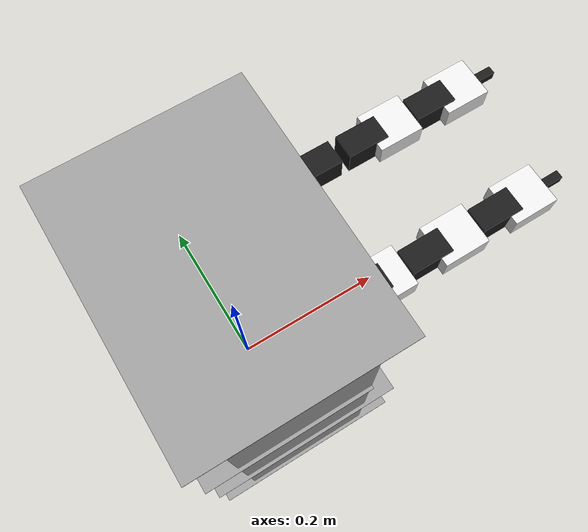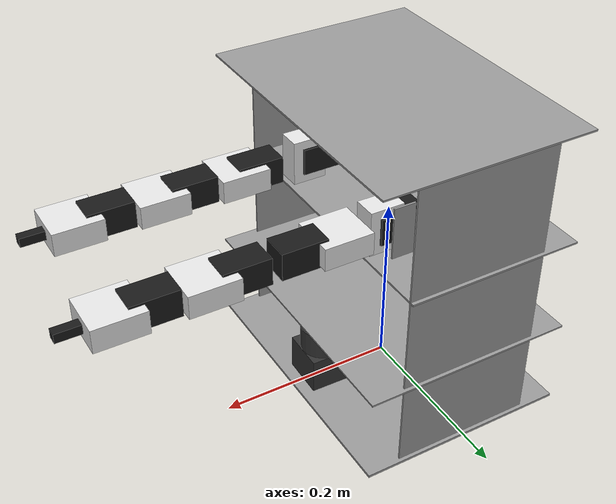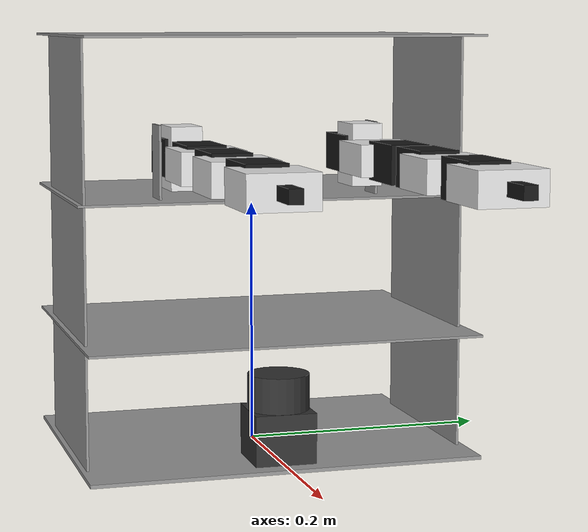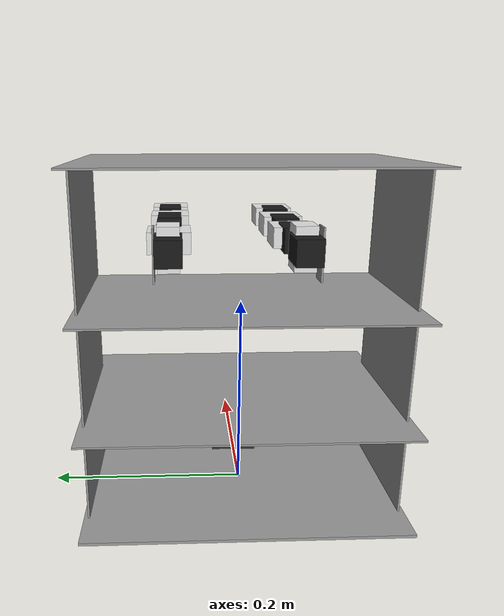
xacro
<?xml version="1.0"?>

<!-- XML namespaces -->
<robot xmlns:sensor="http://playerstage.sourceforge.net/gazebo/xmlschema/#sensor"
       xmlns:controller="http://playerstage.sourceforge.net/gazebo/xmlschema/#controller"
       xmlns:interface="http://playerstage.sourceforge.net/gazebo/xmlschema/#interface"
       xmlns:xacro="http://ros.org/wiki/xacro"
	   name="indomptable">

	<xacro:macro name="cyan1">
		<material name="cyan1">
			<color rgba="0 0.9 0.9 1.0"/>
		</material>
	</xacro:macro>

	<xacro:macro name="cyan2">
		<material name="cyan2">
	     <color rgba="0 0.7 0.7 1.0"/>
		</material>
	</xacro:macro>

	<xacro:macro name="cyan3">
		<material name="cyan3">
	     <color rgba="0 0.5 0.5 1.0"/>
		</material>
	</xacro:macro>

	<xacro:macro name="black">
		<material name="black">
			<color rgba="0.1 0.1 0.1 1.0"/>
		</material>
	</xacro:macro>

	<xacro:macro name="black1">
		<material name="black1">
			<color rgba="0.2 0.2 0.2 1.0"/>
		</material>
	</xacro:macro>

	<xacro:macro name="yellow2">
		<material name="yellow2">
			<color rgba="0.8 0.8 0 1.0"/>
		</material>
	</xacro:macro>

	<xacro:macro name="green1">
		<material name="green1">
			<color rgba="0 1 0 1.0"/>
		</material>
	</xacro:macro>

	<xacro:macro name="green2">
		<material name="green2">
			<color rgba="0.1 0.8 0 1.0"/>
		</material>
	</xacro:macro>

	<xacro:macro name="green3">
		<material name="green3">
			<color rgba="0.1 0.5 0.1 1.0"/>
		</material>
	</xacro:macro>

	<xacro:macro name="grey1">
		<material name="grey1">
			<color rgba="0.9 0.9 0.9 1.0"/>
		</material>
	</xacro:macro>

	<xacro:macro name="grey2">
		<material name="grey2">
			<color rgba="0.6 0.6 0.6 1.0"/>
		</material>
	</xacro:macro>

	<xacro:macro name="grey3">
		<material name="grey3">
			<color rgba="0.8 0.8 0.8 1.0"/>
		</material>
	</xacro:macro>

	<xacro:macro name="blue1">
		<material name="blue1">
			<color rgba="0 0 0.9 1.0"/>
		</material>
	</xacro:macro>

	<xacro:macro name="ax12_color">
		<material name="ax12_color">
			<color rgba="0.1 0.1 0.1 1.0"/>
		</material>
	</xacro:macro>

	<xacro:macro name="bracket_color">
		<material name="bracket_color">
			<color rgba="0.9 0.9 0.9 1.0"/>
		</material>
	</xacro:macro>

	<xacro:macro name="ax12" params="name xyz rpy">
		<link name="${name}">
			<visual>
				<origin xyz="${xyz}" rpy="${rpy}" />
				<geometry>
					<box size="0.5 0.32 0.38" />
				</geometry>
				<material name="black1">
					<color rgba="0.2 0.2 0.2 1.0"/>
				</material>
             </visual>
             <collision>
				<origin xyz="${xyz}" rpy="${rpy}" />
					<geometry>
						<box size="0.5 0.32 0.38" />
					</geometry>
             </collision>
             <xacro:default_inertial mass="0.055" />
        </link>
        <xacro:default_gazebo name="${name}" material="Gazebo/FlatBlack" />
	</xacro:macro>

	<xacro:macro name="bracket1" params="name xyz rpy">
		<link name="${name}">
			<visual>
				<origin xyz="${xyz}" rpy="${rpy}" />
				<geometry>
					<box size="0.05 0.025 0.038" />
				</geometry>
				<material name="black1">
					<color rgba="0.2 0.2 0.2 1.0"/>
				</material>
             </visual>
             <collision>
				<origin xyz="${xyz}" rpy="${rpy}" />
					<geometry>
						<box size="0.05 0.025 0.038" />
					</geometry>
             </collision>
             <xacro:default_inertial mass="0.02" />
        </link>
        <xacro:default_gazebo name="${name}" material="Gazebo/WhiteEmissive" />
	</xacro:macro>

	<xacro:macro name="my_box" params="name lwh xyz rpy mass material *rviz_color">
		<link name="${name}">
			<visual>
				<origin xyz="${xyz}" rpy="${rpy}" />
				<geometry>
					<box size="${lwh}" />
				</geometry>
			    <xacro:insert_block name="rviz_color" />
             </visual>
             <collision>
				<origin xyz="${xyz}" rpy="${rpy}" />
					<geometry>
						<box size="${lwh}" />
					</geometry>
             </collision>
             <xacro:default_inertial mass="${mass}" />
        </link>
        <xacro:default_gazebo name="${name}" material="${material}" />
	</xacro:macro>

	<xacro:macro name="my_cylinder" params="name l r xyz rpy mass material *rviz_color">
		<link name="${name}">
			<visual>
				<origin xyz="${xyz}" rpy="${rpy}" />
				<geometry>
					<cylinder length="${l}" radius="${r}" />
				</geometry>
            	<xacro:insert_block name="rviz_color" />
            </visual>
            <collision>
				<origin xyz="${xyz}" rpy="${rpy}" />
					<geometry>
						<cylinder length="${l}" radius="${r}" />
					</geometry>
            </collision>
            <xacro:default_inertial mass="${mass}" />
        </link>
        <xacro:default_gazebo name="${name}" material="${material}" />
	</xacro:macro>

    <xacro:macro name="default_inertial" params="mass">
		<inertial>
			<mass value="${mass}" />
			<inertia ixx="0.001" ixy="0.0" ixz="0.0"
                     iyy="0.001" iyz="0.0"
                     izz="0.001" />
			</inertial>
    </xacro:macro>

    <xacro:macro name="default_gazebo" params="name material">
 		<gazebo reference="${name}">
			<material>${material}</material>
			<selfCollide>false</selfCollide>
			<turnGravityOff>true</turnGravityOff>
		</gazebo>
    </xacro:macro>

 	<!-- ============================   Body   ============================ -->

	<xacro:my_box name="base_link" lwh="0.24 0.32 0.003" xyz="0 0 0" rpy="0 0 0" mass="0.5" material="Gazebo/Grey">
		<xacro:grey2 />
	</xacro:my_box>

	<xacro:my_box name="base_laser_bottom" lwh="0.05 0.05 0.041" xyz="0 0 0" rpy="0 0 0" mass="0.1" material="Gazebo/FlatBlack">
		<xacro:black1 />
	</xacro:my_box>

	<xacro:my_cylinder name="base_laser" l="0.029" r="0.025" xyz="0 0 0" rpy="0 0 0" mass="0.1" material="Gazebo/Grey">
		<xacro:black1 />
	</xacro:my_cylinder>

	<xacro:my_box name="first_level" lwh="0.24 0.32 0.002" xyz="0 0 0" rpy="0 0 0" mass="0.5" material="Gazebo/Grey">
                <xacro:grey2 />
        </xacro:my_box>

	<xacro:my_box name="netbook_level" lwh="0.2 0.32 0.002" xyz="0 0 0" rpy="0 0 0" mass="0.5" material="Gazebo/Grey">
                <xacro:grey2 />
        </xacro:my_box>

	<xacro:my_box name="top_level" lwh="0.24 0.32 0.002" xyz="0 0 0" rpy="0 0 0" mass="0.5" material="Gazebo/Grey">
                <xacro:grey2 />
        </xacro:my_box>

	<xacro:my_box name="right_arm_panel" lwh="0.025 0.002 0.06" xyz="0 0 0" rpy="0 0 0" mass="0.5" material="Gazebo/Grey">
                <xacro:grey2 />
        </xacro:my_box>

        <xacro:my_box name="left_arm_panel" lwh="0.025 0.002 0.06" xyz="0 0 0" rpy="0 0 0" mass="0.5" material="Gazebo/Grey">
                <xacro:grey2 />
        </xacro:my_box>

        <xacro:my_box name="right_panel" lwh="0.16 0.002 0.34" xyz="0 0 0" rpy="0 0 0" mass="0.5" material="Gazebo/Grey">
                <xacro:grey2 />
        </xacro:my_box>

        <xacro:my_box name="left_panel" lwh="0.16 0.002 0.34" xyz="0 0 0" rpy="0 0 0" mass="0.5" material="Gazebo/Grey">
                <xacro:grey2 />
        </xacro:my_box>

 	<!-- ============================   Arms   ============================ -->

	<xacro:macro name="arm" params="side reflect">

                <xacro:my_box name="${side}_shoulder_roll_link" lwh="0.05 0.03 0.03" xyz="0 0 0" rpy="0 0 0" mass="0.055" material="Gazebo/FlatBlack">
                        <xacro:ax12_color />
                </xacro:my_box>

                <xacro:my_box name="${side}_shoulder_link" lwh="0.038 0.025 0.05" xyz="0.007 0 0" rpy="0 0 0" mass="0.05" material="Gazebo/WhiteEmissive">
                        <xacro:bracket_color />
                </xacro:my_box>

                <xacro:my_box name="${side}_shoulder_lift_link" lwh="0.05 0.03 0.03" xyz="0.015 0 0" rpy="0 0 0" mass="0.055" material="Gazebo/FlatBlack">
                        <xacro:ax12_color />
                </xacro:my_box>

                <xacro:my_box name="${side}_shoulder_link2" lwh="0.054 0.05 0.025" xyz="0.027 0 0" rpy="0 0 0" mass="0.05" material="Gazebo/WhiteEmissive">
                        <xacro:bracket_color />
                </xacro:my_box>

                <xacro:my_box name="${side}_elbow_servo_link" lwh="0.05 0.03 0.03" xyz="0 0 0" rpy="0 0 0" mass="0.055" material="Gazebo/FlatBlack">
                        <xacro:ax12_color />
                </xacro:my_box>

                <xacro:my_box name="${side}_elbow_link" lwh="0.054 0.05 0.025" xyz="0.027 0 0" rpy="0 0 0" mass="0.05" material="Gazebo/WhiteEmissive">
                        <xacro:bracket_color />
                </xacro:my_box>

                <xacro:my_box name="${side}_wrist_lift_link" lwh="0.05 0.03 0.03" xyz="0 0 0" rpy="0 0 0" mass="0.055" material="Gazebo/FlatBlack">
                        <xacro:ax12_color />
                </xacro:my_box>

                <xacro:my_box name="${side}_wrist_link" lwh="0.054 0.05 0.025" xyz="0.027 0 0" rpy="0 0 0" mass="0.05" material="Gazebo/WhiteEmissive">
                        <xacro:bracket_color />
                </xacro:my_box>

                <xacro:my_box name="${side}_pump_link" lwh="0.026 0.01 0.01" xyz="0 0 0" rpy="0 0 0" mass="0.05" material="Gazebo/WhiteEmissive">
                        <xacro:ax12_color />
                </xacro:my_box>

	</xacro:macro>

	<xacro:arm side="left" reflect="1" />

	<xacro:arm side="right" reflect="-1" />

	<!-- =================== Joint Definitions ==================== -->

	<joint name="first_level_joint" type="fixed">
    	<parent link="base_link" />
    	<child link="first_level" />
    	<origin xyz="0 0 0.1" rpy="0 0 0" />
	</joint>

	<joint name="netbook_level_joint" type="fixed">
    	<parent link="base_link" />
    	<child link="netbook_level" />
    	<origin xyz="-0.02 0 0.21" rpy="0 0 0" />
	</joint>

	<joint name="top_level_joint" type="fixed">
    	<parent link="base_link" />
    	<child link="top_level" />
    	<origin xyz="0 0 0.34" rpy="0 0 0" />
	</joint>

	<joint name="base_laser_bottom_joint" type="fixed">
    	<parent link="base_link" />
    	<child link="base_laser_bottom" />
    	<origin xyz="0.081 0 0.022" rpy="0 0 -0.02" />
	</joint>

	<joint name="base_laser_joint" type="fixed">
    	<parent link="base_laser_bottom" />
    	<child link="base_laser" />
    	<origin xyz="0 0 0.035" rpy="0 0 0" />
	</joint>

	<joint name="left_arm_panel_joint" type="fixed">
    	<parent link="netbook_level" />
    	<child link="left_arm_panel" />
    	<origin xyz="0.065 0.09 0.03" rpy="0 0 0" />
	</joint>

        <joint name="right_arm_panel_joint" type="fixed">
        <parent link="netbook_level" />
        <child link="right_arm_panel" />
        <origin xyz="0.065 -0.09 0.03" rpy="0 0 0" />
        </joint>

        <joint name="left_panel_joint" type="fixed">
        <parent link="base_link" />
        <child link="left_panel" />
        <origin xyz="0 0.155 0.17" rpy="0 0 0" />
        </joint>

        <joint name="right_panel_joint" type="fixed">
        <parent link="base_link" />
        <child link="right_panel" />
        <origin xyz="0 -0.155 0.17" rpy="0 0 0" />
        </joint>

        <joint name="left_shoulder_joint" type="fixed">
        <parent link="left_arm_panel" />
        <child link="left_shoulder_roll_link" />
        <origin xyz="0 -0.016 0.005" rpy="0 0 0" />
        <axis xyz="1 0 0" />
        </joint>

        <joint name="left_shoulder_roll_joint" type="revolute">
        <parent link="left_shoulder_roll_link" />
        <child link="left_shoulder_link" />
        <origin xyz="0.01 0 0" rpy="0 0 0" />
        <limit lower="-2.53" upper="2.53" effort="10" velocity="3" />
        <axis xyz="0 0 1" />
        <dynamics damping="0.0"/>
        </joint>

	<joint name="left_shoulder_joint2" type="fixed">
        <parent link="left_shoulder_link" />
        <child link="left_shoulder_link2" />
        <origin xyz="0.03 0 0" rpy="0 0 0" />
        <axis xyz="1 0 0" />
        </joint>

	<joint name="left_shoulder_lift_joint" type="revolute">
        <parent link="left_shoulder_link2" />
        <child link="left_shoulder_lift_link" />
        <origin xyz="0.054 0 0" rpy="0 0 0" />
        <limit lower="-2.53" upper="2.53" effort="10" velocity="3" />
        <axis xyz="0 1 0" />
        <dynamics damping="0.0"/>
        </joint>

        <joint name="left_elbow_servo_joint" type="fixed">
        <parent link="left_shoulder_lift_link" />
        <child link="left_elbow_servo_link" />
        <origin xyz="0.075 0 0" rpy="0 0 0" />
        <axis xyz="0 1 0" />
        </joint>

        <joint name="left_elbow_joint" type="revolute">
        <parent link="left_elbow_servo_link" />
        <child link="left_elbow_link" />
        <origin xyz="0.01 0 0" rpy="0 0 0" />
        <limit lower="-2.53" upper="2.53" effort="10" velocity="3" />
        <axis xyz="0 1 0" />
        <dynamics damping="0.0"/>
        </joint>

        <joint name="left_wrist_lift_joint" type="fixed">
        <parent link="left_elbow_link" />
        <child link="left_wrist_lift_link" />
        <origin xyz="0.08 0 0" rpy="0 0 0" />
        <axis xyz="0 1 0" />
        </joint>

        <joint name="left_wrist_joint" type="revolute">
        <parent link="left_wrist_lift_link" />
        <child link="left_wrist_link" />
        <origin xyz="0.01 0 0" rpy="0 0 0" />
        <limit lower="-2.53" upper="2.53" effort="10" velocity="3" />
        <axis xyz="0 1 0" />
        <dynamics damping="0.0"/>
        </joint>

        <joint name="left_pump_joint" type="fixed">
        <parent link="left_wrist_link" />
        <child link="left_pump_link" />
        <origin xyz="0.067 0 0" rpy="0 0 0" />
        <axis xyz="0 1 0" />
        </joint>

        <joint name="right_shoulder_joint" type="fixed">
        <parent link="right_arm_panel" />
        <child link="right_shoulder_roll_link" />
        <origin xyz="0 0.016 0.005" rpy="0 0 0" />
        <axis xyz="1 0 0" />
        </joint>

        <joint name="right_shoulder_roll_joint" type="revolute">
        <parent link="right_shoulder_roll_link" />
        <child link="right_shoulder_link" />
        <origin xyz="0.01 0 0" rpy="0 0 0" />
        <limit lower="-2.53" upper="2.53" effort="10" velocity="3" />
        <axis xyz="0 0 1" />
        <dynamics damping="0.0"/>
        </joint>

        <joint name="right_shoulder_joint2" type="fixed">
        <parent link="right_shoulder_link" />
        <child link="right_shoulder_lift_link" />
        <origin xyz="0.051 0 0" rpy="0 0 0" />
        <axis xyz="1 0 0" />
        </joint>

        <joint name="right_shoulder_lift_joint" type="revolute">
        <parent link="right_shoulder_lift_link" />
        <child link="right_shoulder_link2" />
        <origin xyz="0.01 0 0" rpy="0 0 0" />
        <limit lower="-2.53" upper="2.53" effort="10" velocity="3" />
        <axis xyz="0 1 0" />
        <dynamics damping="0.0"/>
        </joint>

        <joint name="right_elbow_servo_joint" type="fixed">
        <parent link="right_shoulder_link2" />
        <child link="right_elbow_servo_link" />
        <origin xyz="0.08 0 0" rpy="0 0 0" />
        <axis xyz="0 1 0" />
        </joint>

        <joint name="right_elbow_joint" type="revolute">
        <parent link="right_elbow_servo_link" />
        <child link="right_elbow_link" />
        <origin xyz="0.01 0 0" rpy="0 0 0" />
        <limit lower="-2.53" upper="2.53" effort="10" velocity="3" />
        <axis xyz="0 1 0" />
        <dynamics damping="0.0"/>
        </joint>

        <joint name="right_wrist_lift_joint" type="fixed">
        <parent link="right_elbow_link" />
        <child link="right_wrist_lift_link" />
        <origin xyz="0.08 0 0" rpy="0 0 0" />
        <axis xyz="0 1 0" />
        </joint>

        <joint name="right_wrist_joint" type="revolute">
        <parent link="right_wrist_lift_link" />
        <child link="right_wrist_link" />
        <origin xyz="0.01 0 0" rpy="0 0 0" />
        <limit lower="-2.53" upper="2.53" effort="10" velocity="3" />
        <axis xyz="0 1 0" />
        <dynamics damping="0.0"/>
        </joint>

        <joint name="right_pump_joint" type="fixed">
        <parent link="right_wrist_link" />
        <child link="right_pump_link" />
        <origin xyz="0.067 0 0" rpy="0 0 0" />
        <axis xyz="0 1 0" />
        </joint>

	<gazebo reference="indomptable">
  	</gazebo>
</robot>
